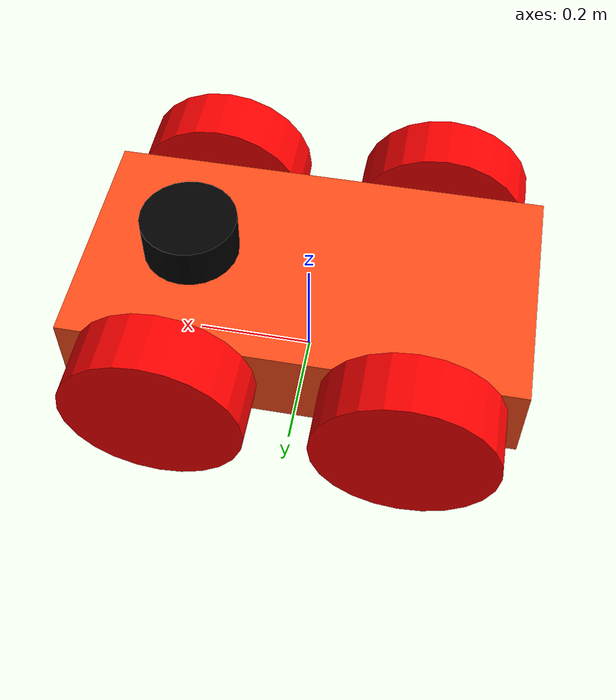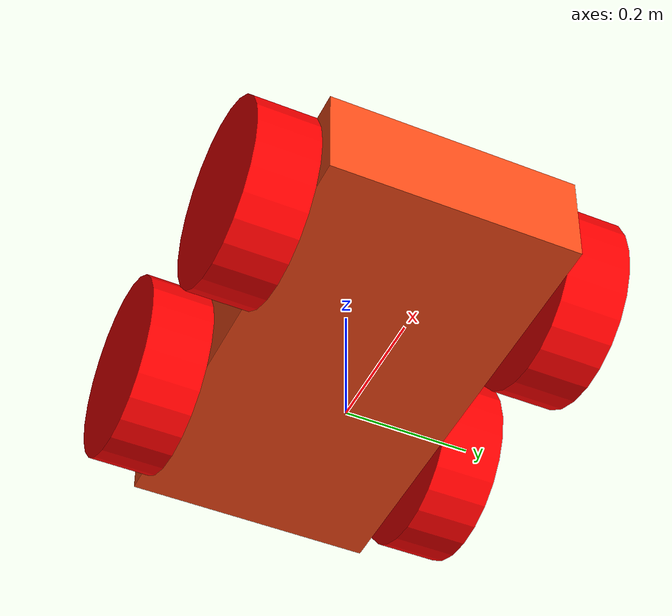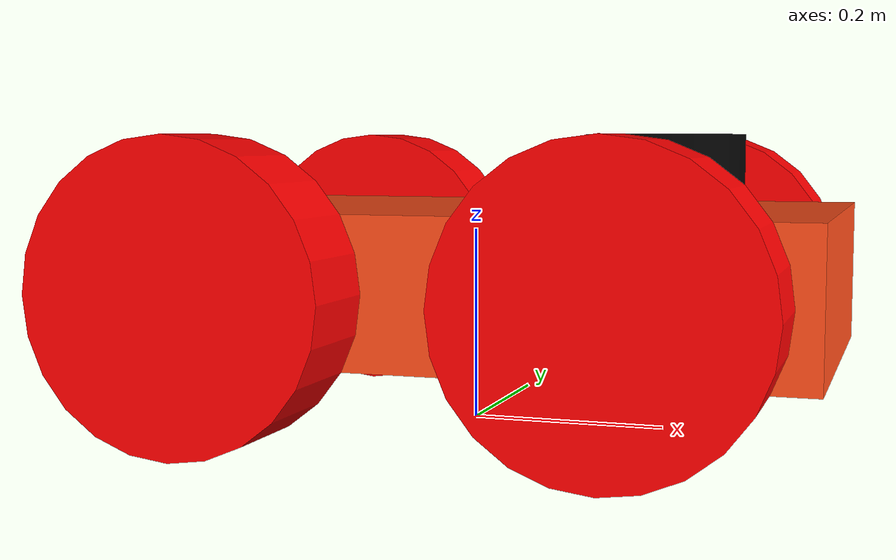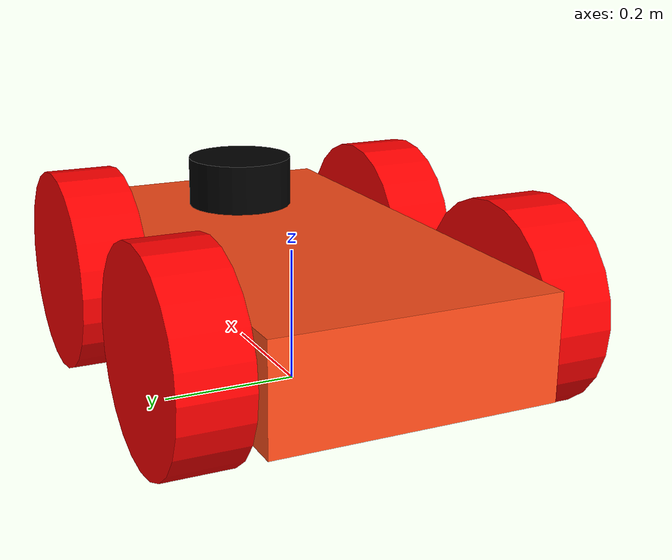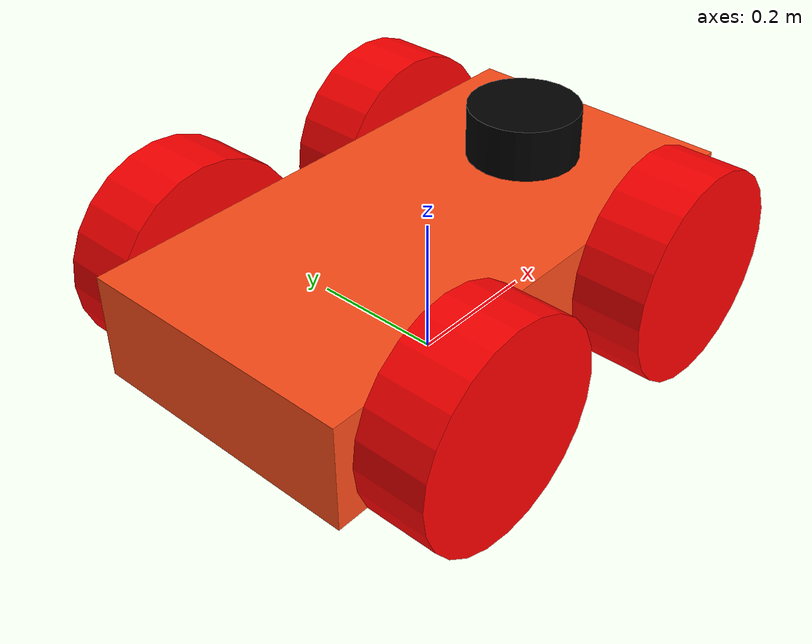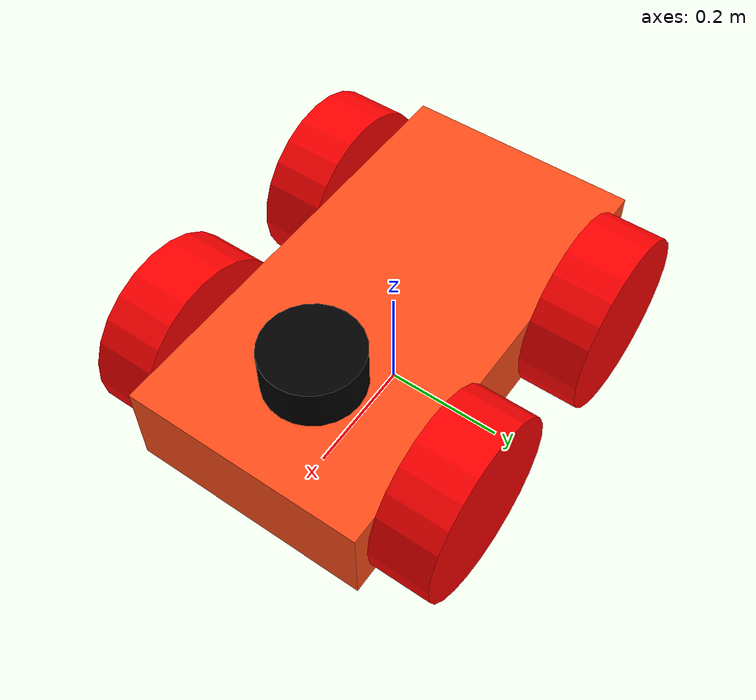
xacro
<?xml version="1.0"?>
<robot xmlns:xacro="http://www.ros.org/wiki/xacro" name="my_rover">

    <xacro:property name="constant"         value = "0.083333333"/> #1/12
    <xacro:property name="chassis_mass"     value = "0.5"/>
    <xacro:property name="chassis_wheel"    value = "0.1"/>
    <xacro:property name="width"            value = "0.75"/>
    <xacro:property name="height"           value = "0.15"/>
    <xacro:property name="depth"            value = "0.4"/>
    <xacro:property name="wheel_radius"     value = "0.15"/>
    <xacro:property name="wheel_length"     value = "0.1"/>

    <!-- rover base link -->
    <link name="base_link">

    </link>

    <joint name="Chassis_joint" type="fixed">
        <parent link="base_link"/>
        <child link="Chassis"/>
        <origin xyz="0.0 0.0 0.0" rpy="0.0 0.0 0.0"/>
    </joint>

    <link name="Chassis">
        <visual>
            <origin xyz="0.0 0.0 ${height}" rpy="0.0 0.0 0.0"/>
            <geometry>
                <box size="${width} ${depth} ${height}" />
            </geometry>
            <material name="">
                <color rgba="1.0 0.3 0.1 1.0"/>
            </material>
        </visual>
        <collision>
            <origin xyz="0.0 0.0 ${height}" rpy="0.0 0.0 0.0"/>
            <geometry>
                <box size="${width} ${depth} ${height}" />
            </geometry>
        </collision>
        <inertial>
            <mass value="${chassis_mass}"/>
            <inertia ixx="${(constant) * (0.5 * (height*height + depth*depth))}" ixy="0.0" ixz="0.0"
                    iyy="${(constant) * (0.5 * (width*width + depth*depth))}" iyz="0.0"
                    izz="${(constant) * (0.5 * (width*width + height*height))}"/>
        </inertial>

    </link>

    <gazebo reference = "Chassis">
        <material> Gazebo/Orange </material>
    </gazebo>

    <joint name="mount_joint" type="fixed">
        <parent link="Chassis"/>
        <child link="mount_link"/>
        <origin xyz="0.2 0.0 0.25" rpy="0.0 0.0 0.0"/>
    </joint>

    <link name="mount_link">
        <visual>
            <geometry>
                <cylinder radius="0.08" length="0.1"/>
            </geometry>
            <material name="">
                <color rgba="0.0 0.0 0.0 1.0"/>
            </material>
        </visual>
        <collision>
            <geometry>
                <cylinder radius="0.08" length="0.1"/>
            </geometry>
        </collision>
    </link>

    <gazebo reference = "mount_link">
        <material> Gazebo/Black</material>
    </gazebo>

    <link name = "front_left_wheel">
        <visual>
            <geometry>
                <cylinder length="${wheel_length}" radius="${wheel_radius}"/>
            </geometry>
            <material name="">
                <color rgba="1.0 0.0 0.0 1.0"/>
            </material>
        </visual>
        <collision>
            <geometry>
                <sphere radius="${wheel_radius}"/>
                <contact_coefficients mu="1" kp="1e+13" kd="1.0"/>
            </geometry>
        </collision>
        <inertial>
            <mass value="${chassis_wheel}" />
            <inertia ixx="${(constant) * 0.1 * (3*wheel_radius*wheel_radius + wheel_length*wheel_length)}" ixy="0.0" ixz="0.0"
            iyy="${(constant) * 0.1 * (3*wheel_radius*wheel_radius + wheel_length*wheel_length)}" iyz="0.0"
            izz="${0.5 * 0.1 * (wheel_radius*wheel_radius)}" /> #1/2

        </inertial>

    </link>
    <joint name="front_left_wheel_joint" type="continuous">
        <parent link="Chassis"/>
        <child link="front_left_wheel"/>
        <origin xyz="0.2 0.25 0.15" rpy="-1.57 0.0 0.0"/>
        <axis xyz="0.0 0.0 1.0"/>
        <dynamics damping="0"/>
        <limit effort="10000" velocity="1000"/>
    </joint>

    <!-- This block provides the simulator (Gazebo) with information on a few additional
    physical properties. See http://gazebosim.org/tutorials/?tut=ros_urdf for more-->
    <gazebo reference="front_left_wheel">
      <mu1 value="1"/>
      <mu2 value="1"/>
      <kp value="1000000.0" />
      <kd value="100.0" />
      <slip1 value="0.5" />
      <slip2 value="0.5" />
      <material>Gazebo/Red</material>
    </gazebo>

    <!-- This block connects the wheel joint to an actuator (motor), which informs both
    simulation and visualization of the robot -->
    <transmission name="front_left_wheel_trans">
      <type>transmission_interface/SimpleTransmission</type>
      <actuator name="front_left_wheel_motor">
        <hardwareInterface>hardware_interface/VelocityJointInterface</hardwareInterface>
        <mechanicalReduction>1</mechanicalReduction>
      </actuator>
      <joint name="front_left_wheel_joint">
        <hardwareInterface>hardware_interface/VelocityJointInterface</hardwareInterface>
      </joint>
    </transmission>

    <!-- front_right_wheel -->
    <link name = "front_right_wheel">
        <visual>
            <geometry>
                <cylinder length="${wheel_length}" radius="${wheel_radius}"/>
            </geometry>
            <material name="">
                <color rgba="1.0 0.0 0.0 1.0"/>
            </material>
        </visual>
        <collision>
            <geometry>
                <sphere radius="${wheel_radius}"/>
                <contact_coefficients mu="1" kp="1e+13" kd="1.0"/>
            </geometry>
        </collision>
        <inertial>
            <mass value="${chassis_wheel}" />
            <inertia ixx="${(constant) * 0.1 * (3*wheel_radius*wheel_radius + wheel_length*wheel_length)}" ixy="0.0" ixz="0.0"
            iyy="${(constant) * 0.1 * (3*wheel_radius*wheel_radius + wheel_length*wheel_length)}" iyz="0.0"
            izz="${0.5 * 0.1 * (wheel_radius*wheel_radius)}" /> #1/2

        </inertial>

    </link>
    <joint name="front_right_wheel_joint" type="continuous">
        <parent link="Chassis"/>
        <child link="front_right_wheel"/>
        <origin xyz="0.2 -0.25 0.15" rpy="1.57 0.0 0.0"/>
        <axis xyz="0.0 0.0 -1.0"/>
        <dynamics damping="0"/>
        <limit effort="10000" velocity="1000"/>
    </joint>

    <!-- This block provides the simulator (Gazebo) with information on a few additional
    physical properties. See http://gazebosim.org/tutorials/?tut=ros_urdf for more-->
    <gazebo reference="front_right_wheel">
      <mu1 value="1"/>
      <mu2 value="1"/>
      <kp value="1000000.0" />
      <kd value="100.0" />
      <slip1 value="0.5" />
      <slip2 value="0.5" />
      <material>Gazebo/Red</material>
    </gazebo>

    <!-- This block connects the wheel joint to an actuator (motor), which informs both
    simulation and visualization of the robot -->
    <transmission name="front_right_wheel_trans">
      <type>transmission_interface/SimpleTransmission</type>
      <actuator name="front_right_wheel_motor">
        <hardwareInterface>hardware_interface/VelocityJointInterface</hardwareInterface>
        <mechanicalReduction>1</mechanicalReduction>
      </actuator>
      <joint name="front_right_wheel_joint">
        <hardwareInterface>hardware_interface/VelocityJointInterface</hardwareInterface>
      </joint>
    </transmission>

    <link name = "rear_left_wheel">
        <visual>
            <geometry>
                <cylinder length="${wheel_length}" radius="${wheel_radius}"/>
            </geometry>
            <material name="">
                <color rgba="1.0 0.0 0.0 1.0"/>
            </material>
        </visual>
        <collision>
            <geometry>
                <sphere radius="${wheel_radius}"/>
                <contact_coefficients mu="1" kp="1e+13" kd="1.0"/>
            </geometry>
        </collision>
        <inertial>
            <mass value="${chassis_wheel}" />
            <inertia ixx="${(constant) * 0.1 * (3*wheel_radius*wheel_radius + wheel_length*wheel_length)}" ixy="0.0" ixz="0.0"
            iyy="${(constant) * 0.1 * (3*wheel_radius*wheel_radius + wheel_length*wheel_length)}" iyz="0.0"
            izz="${0.5 * 0.1 * (wheel_radius*wheel_radius)}" /> #1/2

        </inertial>

    </link>
    <joint name="rear_left_wheel_joint" type="continuous">
        <parent link="Chassis"/>
        <child link="rear_left_wheel"/>
        <origin xyz="-0.2 0.25 0.15" rpy="-1.57 0.0 0.0"/>
        <axis xyz="0.0 0.0 1.0"/>
        <dynamics damping="0"/>
        <limit effort="10000" velocity="1000"/>
    </joint>

    <!-- This block provides the simulator (Gazebo) with information on a few additional
    physical properties. See http://gazebosim.org/tutorials/?tut=ros_urdf for more-->
    <gazebo reference="rear_left_wheel">
      <mu1 value="1"/>
      <mu2 value="1"/>
      <kp value="1000000.0" />
      <kd value="100.0" />
      <slip1 value="0.5" />
      <slip2 value="0.5" />
      <material>Gazebo/Red</material>
    </gazebo>

    <!-- This block connects the wheel joint to an actuator (motor), which informs both
    simulation and visualization of the robot -->
    <transmission name="rear_left_wheel_trans">
      <type>transmission_interface/SimpleTransmission</type>
      <actuator name="rear_left_wheel_motor">
        <hardwareInterface>hardware_interface/VelocityJointInterface</hardwareInterface>
        <mechanicalReduction>1</mechanicalReduction>
      </actuator>
      <joint name="rear_left_wheel_joint">
        <hardwareInterface>hardware_interface/VelocityJointInterface</hardwareInterface>
      </joint>
    </transmission>

    <link name = "rear_right_wheel">
        <visual>
            <geometry>
                <cylinder length="${wheel_length}" radius="${wheel_radius}"/>
            </geometry>
            <material name="">
                <color rgba="1.0 0.0 0.0 1.0"/>
            </material>
        </visual>
        <collision>
            <geometry>
                <sphere radius="${wheel_radius}"/>
                <contact_coefficients mu="1" kp="1e+13" kd="1.0"/>
            </geometry>
        </collision>
        <inertial>
            <mass value="${chassis_wheel}" />
            <inertia ixx="${(constant) * 0.1 * (3*wheel_radius*wheel_radius + wheel_length*wheel_length)}" ixy="0.0" ixz="0.0"
            iyy="${(constant) * 0.1 * (3*wheel_radius*wheel_radius + wheel_length*wheel_length)}" iyz="0.0"
            izz="${0.5 * 0.1 * (wheel_radius*wheel_radius)}" /> #1/2

        </inertial>

    </link>
    <joint name="rear_right_wheel_joint" type="continuous">
        <parent link="Chassis"/>
        <child link="rear_right_wheel"/>
        <origin xyz="-0.2 -0.25 0.15" rpy="1.57 0.0 0.0"/>
        <axis xyz="0.0 0.0 -1.0"/>
        <dynamics damping="0"/>
        <limit effort="10000" velocity="1000"/>
    </joint>

    <!-- This block provides the simulator (Gazebo) with information on a few additional
    physical properties. See http://gazebosim.org/tutorials/?tut=ros_urdf for more-->
    <gazebo reference="rear_right_wheel">
      <mu1 value="1"/>
      <mu2 value="1"/>
      <kp value="1000000.0" />
      <kd value="100.0" />
      <slip1 value="0.5" />
      <slip2 value="0.5" />
      <material>Gazebo/Red</material>
    </gazebo>

    <!-- This block connects the wheel joint to an actuator (motor), which informs both
    simulation and visualization of the robot -->
    <transmission name="rear_right_wheel_trans">
      <type>transmission_interface/SimpleTransmission</type>
      <actuator name="rear_right_wheel_motor">
        <hardwareInterface>hardware_interface/VelocityJointInterface</hardwareInterface>
        <mechanicalReduction>1</mechanicalReduction>
      </actuator>
      <joint name="rear_right_wheel_joint">
        <hardwareInterface>hardware_interface/VelocityJointInterface</hardwareInterface>
      </joint>
    </transmission>

</robot>
